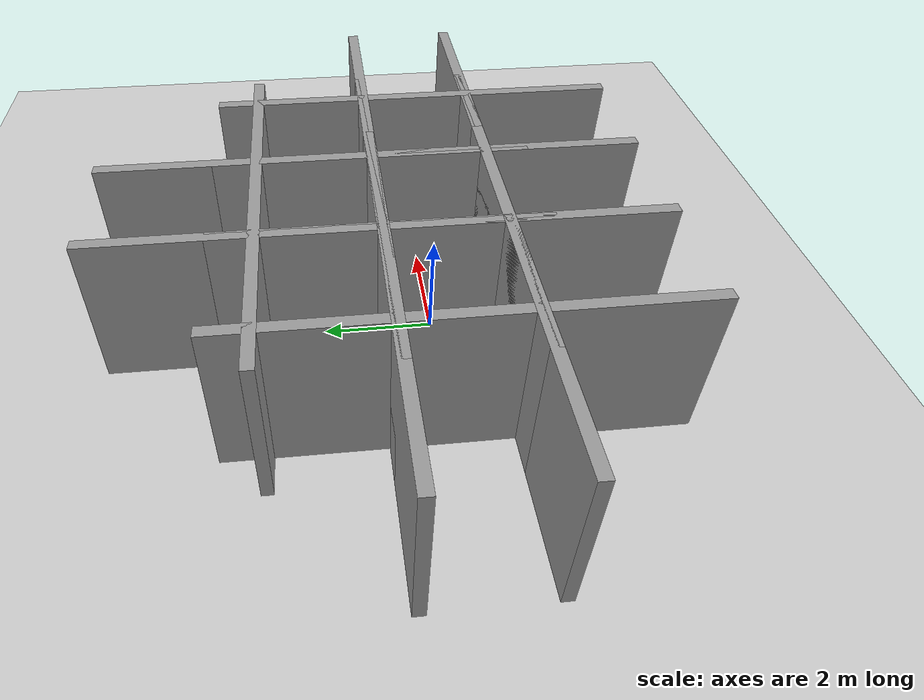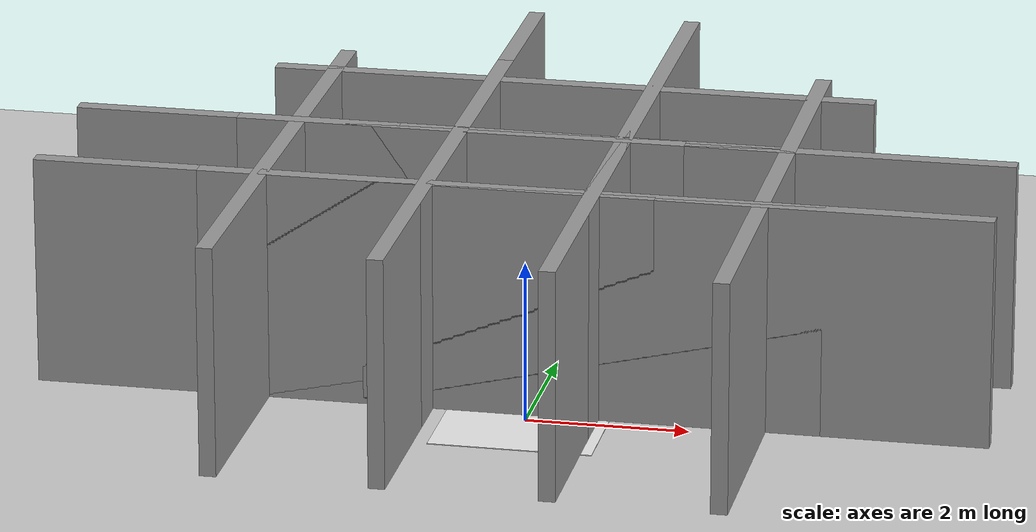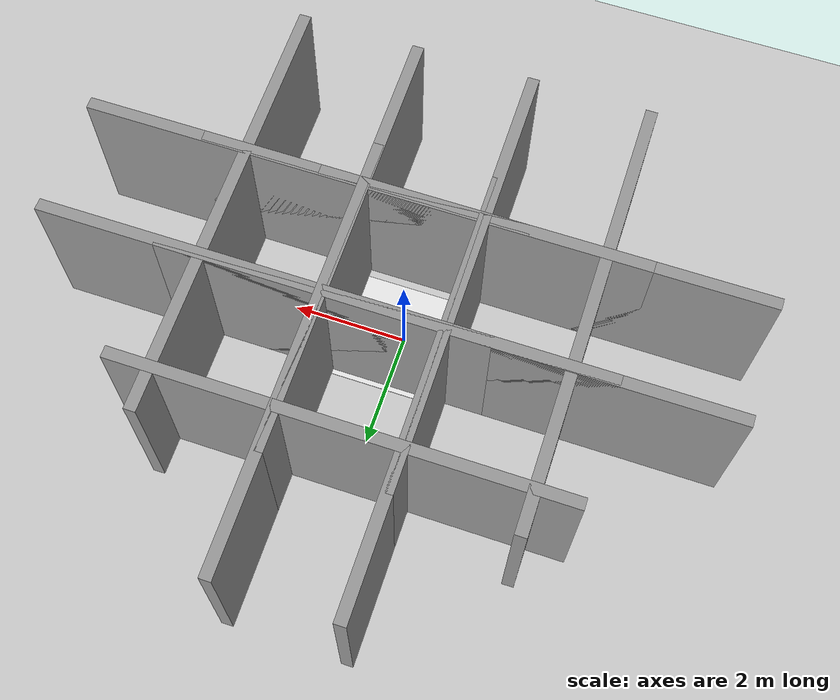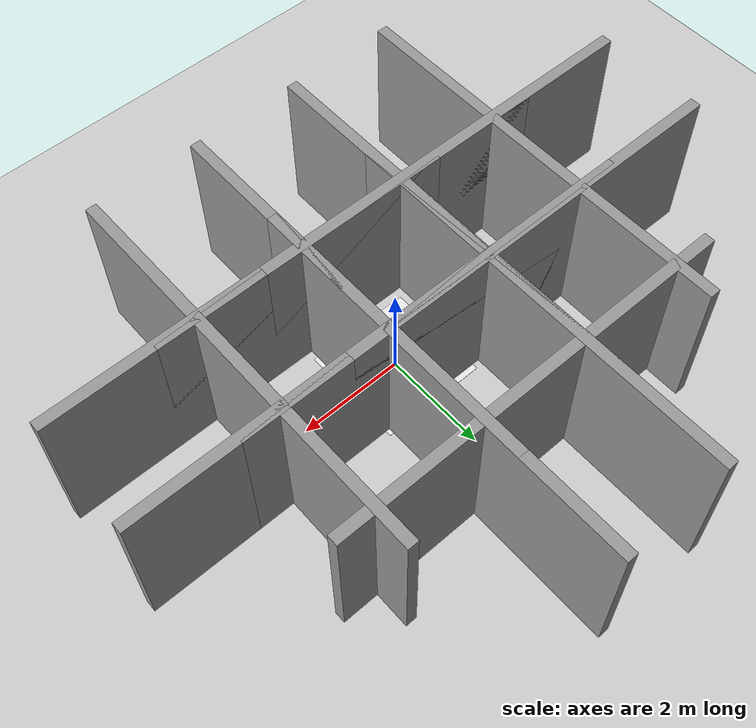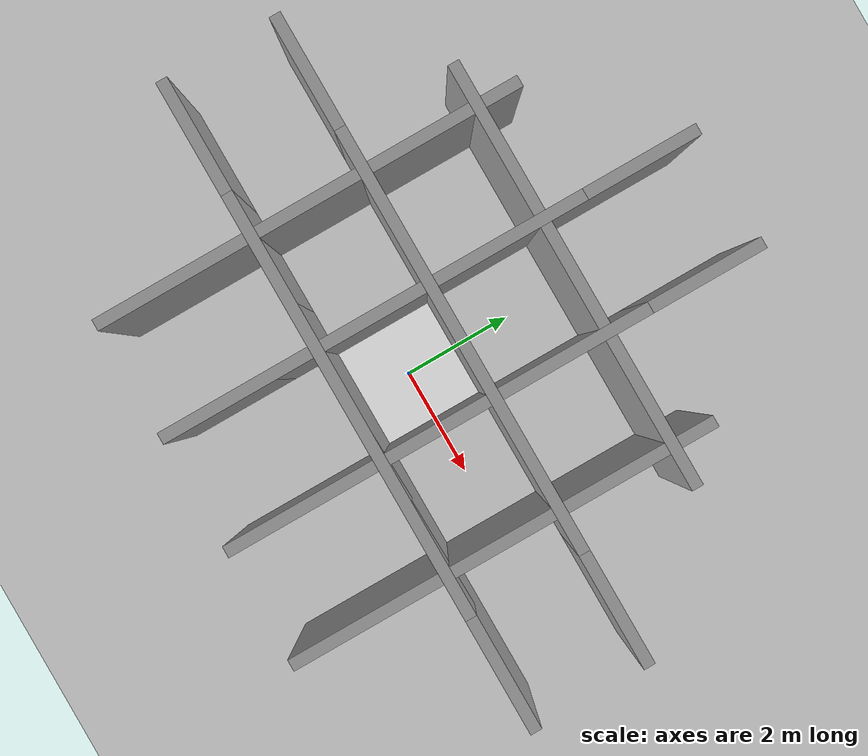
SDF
<?xml version="1.0" ?>
<sdf version="1.6">
  <world name="three_compartments_world">

    <!-- Basic setup -->
    <include>
      <uri>model://ground_plane</uri>
    </include>
    <include>
      <uri>model://sun</uri>
    </include>

    <!-- Function to generate a 2x2m room -->
    <!-- We'll make walls using thin boxes -->

    <!-- Lobby at center (0,0) -->
    <model name="lobby">
      <static>true</static>

      <!-- Floor -->
      <link name="floor">
        <collision name="collision">
          <geometry>
            <box>
              <size>2 2 0.01</size>
            </box>
          </geometry>
        </collision>
        <visual name="visual">
          <geometry>
            <box>
              <size>2 2 0.01</size>
            </box>
          </geometry>
          <material><script><uri>file://media/materials/scripts/gazebo.material</uri><name>Gazebo/White</name></script></material>
        </visual>
        <pose>0 0 0.005 0 0 0</pose>
      </link>

      <!-- Walls -->
      <!-- Front -->
      <include>
        <uri>model://grey_wall</uri>
        <pose>0 -1 0.5 0 0 0</pose>
      </include>
      <!-- Back -->
      <include>
        <uri>model://grey_wall</uri>
        <pose>0 1 0.5 0 0 0</pose>
      </include>
      <!-- Left -->
      <include>
        <uri>model://grey_wall</uri>
        <pose>-1 0 0.5 0 0 1.5708</pose>
      </include>
      <!-- Right -->
      <include>
        <uri>model://grey_wall</uri>
        <pose>1 0 0.5 0 0 1.5708</pose>
      </include>
    </model>

    <!-- Compartment A (Top / North) -->
    <model name="compartment_a">
      <static>true</static>
      <include>
        <uri>model://grey_wall</uri>
        <pose>0 3 0.5 0 0 0</pose>
      </include>
      <include>
        <uri>model://grey_wall</uri>
        <pose>0 1 0.5 0 0 0</pose> <!-- Bottom shared with lobby -->
      </include>
      <include>
        <uri>model://grey_wall</uri>
        <pose>-1 2 0.5 0 0 1.5708</pose>
      </include>
      <include>
        <uri>model://grey_wall</uri>
        <pose>1 2 0.5 0 0 1.5708</pose>
      </include>
    </model>

    <!-- Compartment B (Left / West) -->
    <model name="compartment_b">
      <static>true</static>
      <include>
        <uri>model://grey_wall</uri>
        <pose>-3 0 0.5 0 0 1.5708</pose>
      </include>
      <include>
        <uri>model://grey_wall</uri>
        <pose>-1 0 0.5 0 0 1.5708</pose> <!-- Right shared with lobby -->
      </include>
      <include>
        <uri>model://grey_wall</uri>
        <pose>-2 1 0.5 0 0 0</pose>
      </include>
      <include>
        <uri>model://grey_wall</uri>
        <pose>-2 -1 0.5 0 0 0</pose>
      </include>
    </model>

    <!-- Compartment C (Right / East) -->
    <model name="compartment_c">
      <static>true</static>
      <include>
        <uri>model://grey_wall</uri>
        <pose>3 0 0.5 0 0 1.5708</pose>
      </include>
      <include>
        <uri>model://grey_wall</uri>
        <pose>1 0 0.5 0 0 1.5708</pose> <!-- Left shared with lobby -->
      </include>
      <include>
        <uri>model://grey_wall</uri>
        <pose>2 1 0.5 0 0 0</pose>
      </include>
      <include>
        <uri>model://grey_wall</uri>
        <pose>2 -1 0.5 0 0 0</pose>
      </include>
    </model>

  </world>
</sdf>

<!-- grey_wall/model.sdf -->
<sdf version="1.5">
  <model name="grey_wall">
    <static>true</static>
    <link name="link">
      <pose>0 0 1.4 0 0 0</pose>
      <collision name="collision">
        <geometry>
          <box>
            <size>7.5 0.2 2.8</size>
          </box>
        </geometry>
      </collision>
      <visual name="visual">
        <cast_shadows>false</cast_shadows>
        <geometry>
          <box>
            <size>7.5 0.2 2.8</size>
          </box>
        </geometry>
        <material>
          <script>
            <uri>model://../model_source/models/grey_wall/materials/scripts</uri>
            <uri>model://../model_source/models/grey_wall/materials/textures</uri>
            <name>vrc/grey_wall</name>
          </script>
        </material>
      </visual>
    </link>
  </model>
</sdf>
